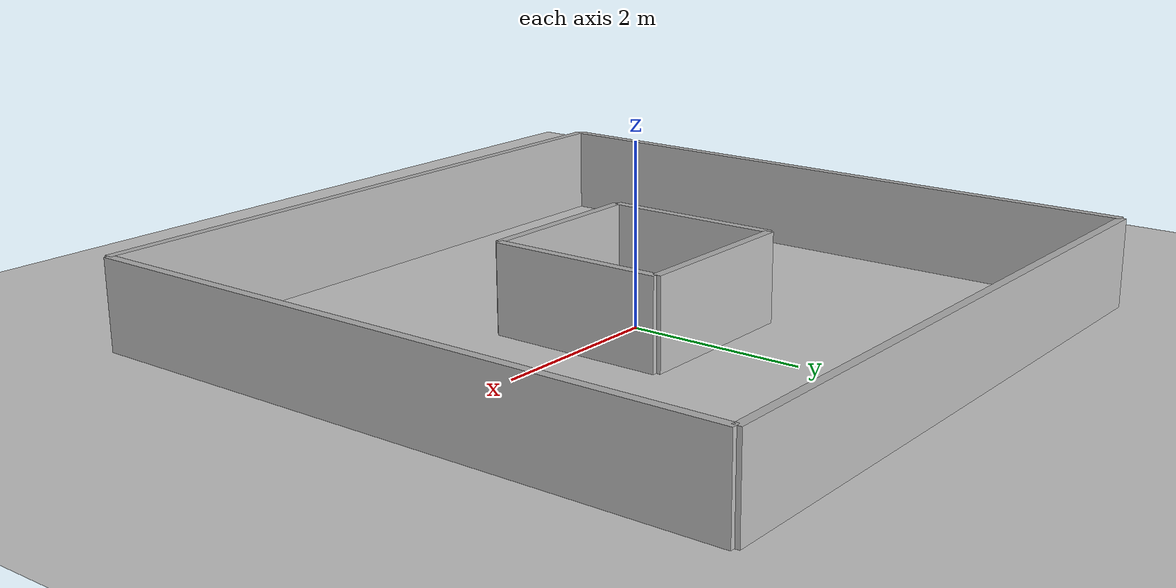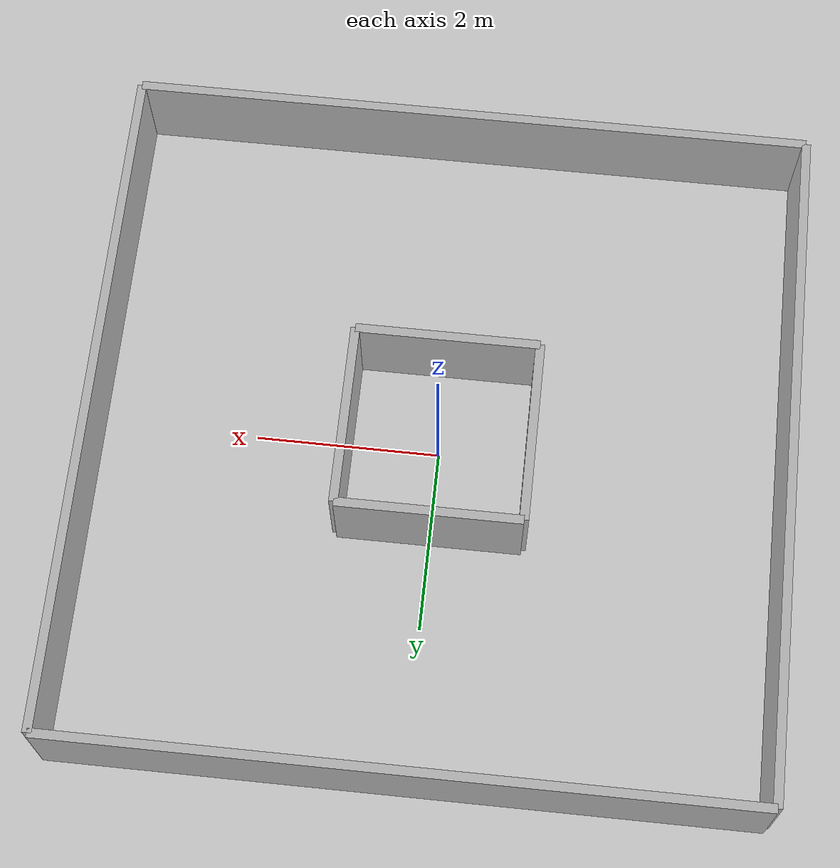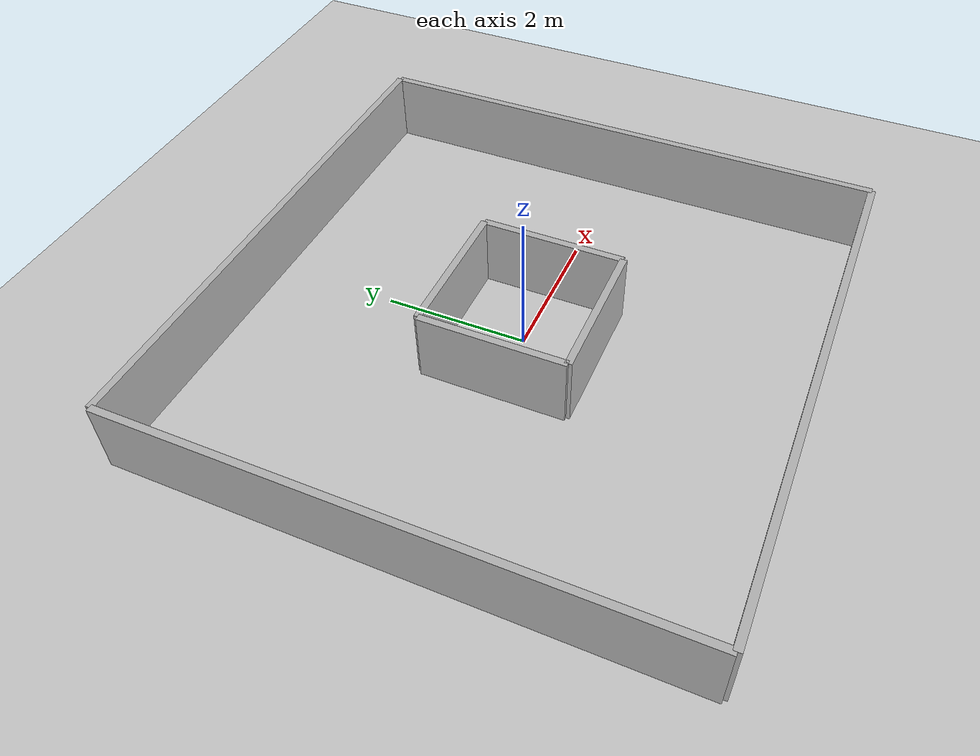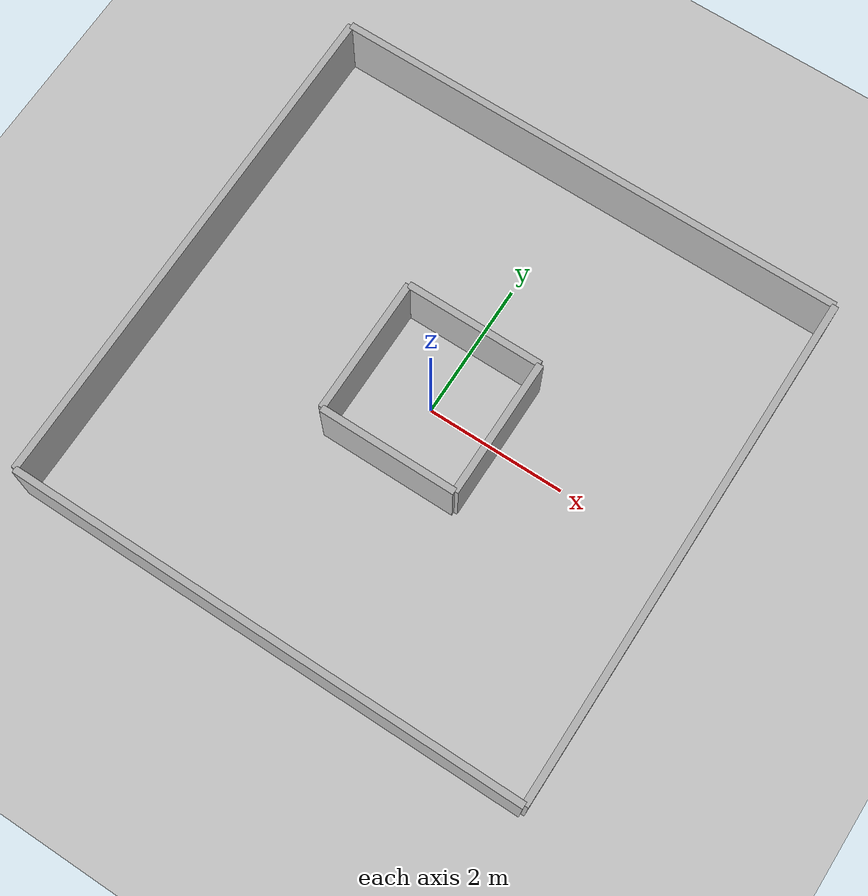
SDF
<?xml version="1.0" ?>
<sdf version="1.6">
  <world name="box_world">
    <plugin name="gazebo_ros_state" filename="libgazebo_ros_state.so">
      <ros>
        <namespace>/test</namespace>
        <argument>model_states:=model_states_demo</argument>
      </ros>
      <update_rate>1.0</update_rate>
    </plugin>
    <gui fullscreen='0'>
      <camera name='user_camera'>
        <pose>0.114245 -3.45755 33.7709 0 1.5698 -0.010384</pose>
        <view_controller>orbit</view_controller>
        <projection_type>perspective</projection_type>
      </camera>
    </gui>
    <!-- Include ground plane and sun -->
    <include>
      <uri>model://ground_plane</uri>
    </include>
    <include>
      <uri>model://sun</uri>
    </include>

    <!-- Square Box Walls -->
    <!-- Wall 1 (front) -->
    <model name="wall_front">
      <static>true</static>
      <pose>0 3.75 0.5 0 0 0</pose>
      <link name="link">
        <collision name="collision">
          <geometry>
            <box>
              <size>7.5 0.1 1</size>
            </box>
          </geometry>
        </collision>
        <visual name="visual">
          <geometry>
            <box>
              <size>7.5 0.1 1</size>
            </box>
          </geometry>
        </visual>
      </link>
    </model>

    <!-- Wall 2 (back) -->
    <model name="wall_back">
      <static>true</static>
      <pose>0 -3.75 0.5 0 0 0</pose>
      <link name="link">
        <collision name="collision">
          <geometry>
            <box>
              <size>7.5 0.1 1</size>
            </box>
          </geometry>
        </collision>
        <visual name="visual">
          <geometry>
            <box>
              <size>7.5 0.1 1</size>
            </box>
          </geometry>
        </visual>
      </link>
    </model>

    <!-- Wall 3 (left) -->
    <model name="wall_left">
      <static>true</static>
      <pose>-3.75 0 0.5 0 0 0</pose>
      <link name="link">
        <collision name="collision">
          <geometry>
            <box>
              <size>0.1 7.5 1</size>
            </box>
          </geometry>
        </collision>
        <visual name="visual">
          <geometry>
            <box>
              <size>0.1 7.5 1</size>
            </box>
          </geometry>
        </visual>
      </link>
    </model>

    <!-- Wall 4 (right) -->
    <model name="wall_right">
      <static>true</static>
      <pose>3.75 0 0.5 0 0 0</pose>
      <link name="link">
        <collision name="collision">
          <geometry>
            <box>
              <size>0.1 7.5 1</size>
            </box>
          </geometry>
        </collision>
        <visual name="visual">
          <geometry>
            <box>
              <size>0.1 7.5 1</size>
            </box>
          </geometry>
        </visual>
      </link>
    </model>

    <!-- Square Box Walls -->
    <!-- Wall 1 (front) -->
    <model name="wall_front_2">
      <static>true</static>
      <pose>0 1 0.5 0 0 0</pose>
      <link name="link">
        <collision name="collision">
          <geometry>
            <box>
              <size>2 0.1 1</size>
            </box>
          </geometry>
        </collision>
        <visual name="visual">
          <geometry>
            <box>
              <size>2 0.1 1</size>
            </box>
          </geometry>
        </visual>
      </link>
    </model>

    <!-- Wall 2 (back) -->
    <model name="wall_back_2">
      <static>true</static>
      <pose>0 -1 0.5 0 0 0</pose>
      <link name="link">
        <collision name="collision">
          <geometry>
            <box>
              <size>2 0.1 1</size>
            </box>
          </geometry>
        </collision>
        <visual name="visual">
          <geometry>
            <box>
              <size>2 0.1 1</size>
            </box>
          </geometry>
        </visual>
      </link>
    </model>

    <!-- Wall 3 (left) -->
    <model name="wall_left_2">
      <static>true</static>
      <pose>-1 0 0.5 0 0 0</pose>
      <link name="link">
        <collision name="collision">
          <geometry>
            <box>
              <size>0.1 2 1</size>
            </box>
          </geometry>
        </collision>
        <visual name="visual">
          <geometry>
            <box>
              <size>0.1 2 1</size>
            </box>
          </geometry>
        </visual>
      </link>
    </model>

    <!-- Wall 4 (right) -->
    <model name="wall_right_2">
      <static>true</static>
      <pose>1 0 0.5 0 0 0</pose>
      <link name="link">
        <collision name="collision">
          <geometry>
            <box>
              <size>0.1 2 1</size>
            </box>
          </geometry>
        </collision>
        <visual name="visual">
          <geometry>
            <box>
              <size>0.1 2 1</size>
            </box>
          </geometry>
        </visual>
      </link>
    </model>

  </world>
</sdf>
